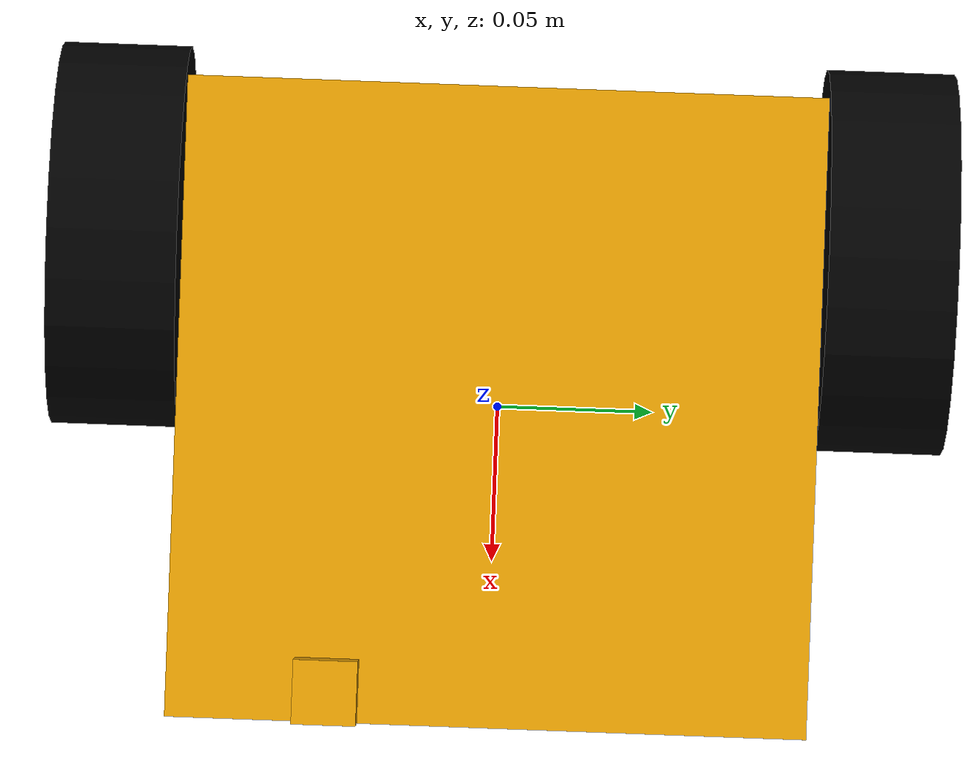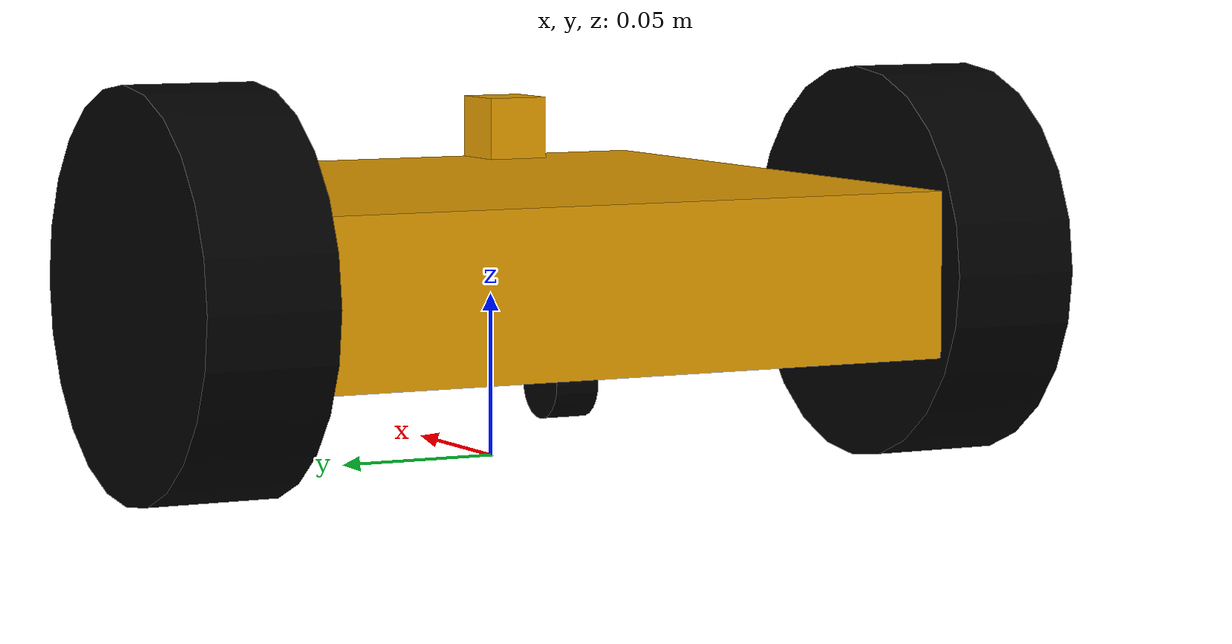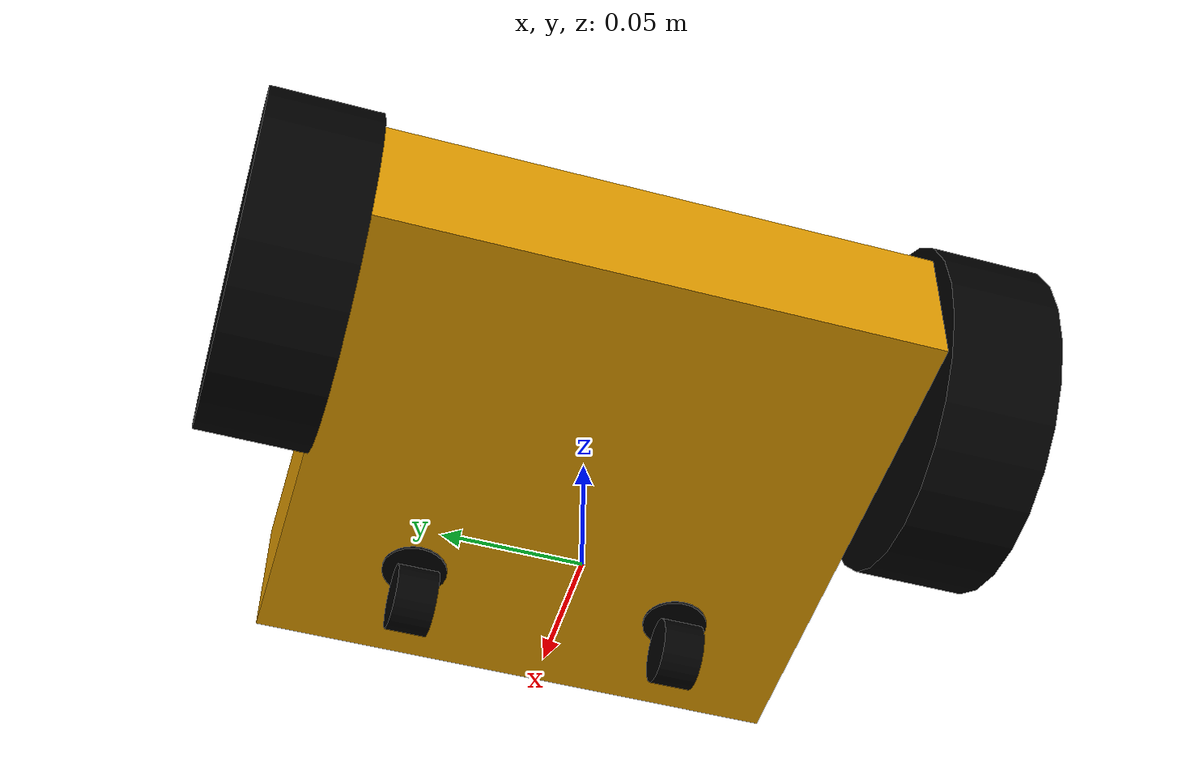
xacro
<?xml version="1.0"?>
<robot name="stupidbot" xmlns:xacro="http://www.ros.org/wiki/xacro">
	<xacro:include filename="$(find stupidbot_description)/urdf/stupidbot_library.urdf.xacro"/>

	<material name="black">
		<color rgba="0 0 0 1"/>
	</material>

	<!-- Base link, center of chassis and body -->
	<link name="base_link">
		<visual>
			<geometry>
				<box size="${chassis_length} ${chassis_width} ${chassis_height}"/>
			</geometry>
		</visual>
		<inertial>
			<mass value="20"/>
			<inertia ixx="${chassis_ixx}" ixy="0.0" ixz="0.0" iyy="${chassis_iyy}" iyz="0.0" izz="${chassis_izz}"/>
		</inertial>
		<collision>
			<geometry>
				<box size="${chassis_length} ${chassis_width} ${chassis_height}"/>
			</geometry>
			<origin xyz="0 0 0" rpy="0 0 0"/>
		</collision>
		<gazebo reference="base_link"/>
	</link>

	<!-- Base footprint as a reference to the ground beneath robot -->
	<link name="base_footprint">
		<visual>
			<geometry>
				<box size="0.001 0.001 0.001"/>
			</geometry>
			<origin xyz="0 0 0" rpy="0 0 0"/>
		</visual>
		<inertial>
			<mass value="0.0001"/>
			<origin xyz="0 0 0"/>
			<inertia ixx="0.0001" ixy="0.0" ixz="0.0" iyy="0.0001" iyz="0.0" izz="0.0001"/>
		</inertial>
		<gazebo reference="base_footprint"/>
	</link>

	<!-- Joint connecting base_link to the footprint -->
	<joint name="base_footprint_joint" type="fixed">
		<origin xyz="0 0 0.06"/>
		<parent link="base_footprint"/>
		<child link="base_link"/>
		<gazebo reference="base_footprint_joint"/>
	</joint>

	<!-- Wheels, complete specification including links and joints -->
	<wheel lr="right" parent="base_link" reflectY="1" />
	<wheel lr="left" parent="base_link" reflectY="-1" />

	<!-- Caster(s), complete specification including links and joints -->
	<caster parent="base_link" lr="right" reflectY="-1"/>
	<caster parent="base_link" lr="left" reflectY="1"/>

	<!-- Camera -->
	<stupidbot_camera parent="base_link"/>

	<!-- Start gazebo plugins, diff_drive and joint state publisher as of now -->
	<stupidbot_gazebo/>
	<gazebo reference="stupidbot"/>
</robot>

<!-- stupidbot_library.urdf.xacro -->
<robot xmlns:xacro="http://ros.org/wiki/xacro">
	<!-- General robot properties -->
	<xacro:include filename="$(find stupidbot_description)/urdf/stupidbot_properties.urdf.xacro"/>
	<!-- Robot wheel creation macro -->
	<xacro:include filename="$(find stupidbot_description)/urdf/stupidbot_wheel.urdf.xacro"/>
	<!-- Caster wheel macro -->
	<xacro:include filename="$(find stupidbot_description)/urdf/stupidbot_caster.urdf.xacro"/>
	<!-- Camera macro -->
	<xacro:include filename="$(find stupidbot_description)/urdf/sensors/stupidbot_camera.urdf.xacro"/>
	<!-- Gazebo descriptions -->
	<xacro:include filename="$(find stupidbot_description)/urdf/stupidbot_gazebo.urdf.xacro"/>
</robot>

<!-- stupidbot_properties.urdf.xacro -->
<robot>

	<!-- Chassis/body properties -->
	<property name="chassis_length" value="0.2"/>
	<property name="chassis_width" value="0.2"/>
	<property name="chassis_height" value="0.05"/>
	<property name="chassis_mass" value="40.0"/>
	<property name="chassis_ixx" value="${chassis_mass*(chassis_length*chassis_length + chassis_height*chassis_height)/12}"/>
	<property name="chassis_iyy" value="${chassis_mass*(chassis_width*chassis_width + chassis_height*chassis_height)/12}"/>
	<property name="chassis_izz" value="${chassis_mass*(chassis_length*chassis_length + chassis_width*chassis_width)/12}"/>

	<!-- Wheel properties -->
	<property name="wheel_mass" value="10.0"/>
	<property name="wheel_radius" value="0.06"/>
	<property name="wheel_width" value="0.04"/>
	<property name="wheel_ixx" value="${(wheel_mass*(3*wheel_radius*wheel_radius + wheel_width*wheel_width))/12}"/>
	<property name="wheel_iyy" value="${(wheel_mass*(3*wheel_radius*wheel_radius + wheel_width*wheel_width))/12}"/>
	<property name="wheel_izz" value="${(wheel_mass*wheel_radius*wheel_radius)/2}"/>

	<!-- Camera properties -->
	<property name="camera_mass" value="0.5"/>
	<property name="camera_length" value="0.02"/>
	<property name="camera_width" value="0.02"/>
	<property name="camera_height" value="0.02"/>
	<property name="camera_x_pos" value="${chassis_length/2 - camera_length/2}"/>
	<property name="camera_y_pos" value="-${chassis_width/4}"/>
	<property name="camera_z_pos" value="${chassis_height/2 + camera_height/2}"/>
	<property name="camera_ixx" value="${camera_mass*(camera_length*camera_length + camera_height*camera_height)/12}"/>
	<property name="camera_iyy" value="${camera_mass*(camera_width*camera_width + camera_height*camera_height)/12}"/>
	<property name="camera_izz" value="${camera_mass*(camera_length*camera_length + camera_width*camera_width)/12}"/>

	<!-- Caster properties -->
	<property name="caster_width" value="0.015"/>
	<property name="caster_radius" value="0.012"/>
	<property name="caster_mass" value="5.0"/>
	<property name="caster_ixx" value="${caster_mass*(3*caster_radius*caster_radius + caster_width*caster_width)/12}"/>
	<property name="caster_iyy" value="${caster_mass*(3*caster_radius*caster_radius + caster_width*caster_width)/12}"/>
	<property name="caster_izz" value="${caster_mass*(caster_radius*caster_radius)/2}"/>
	<property name="caster_y_displacement" value="${chassis_width/4}"/>

</robot>

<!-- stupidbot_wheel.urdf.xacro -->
<robot xmlns:xacro="http://www.ros.org/wiki/xacro">

	<!-- Include chassis properties for positioning joints -->
	<xacro:include filename="$(find stupidbot_description)/urdf/stupidbot_properties.urdf.xacro"/>

	<!-- Full description macro for wheel including transmissions, etc -->
	<xacro:macro name="wheel" params="lr parent reflectY">

		<!-- Wheel link description -->
		<link name="${lr}_wheel">
			<visual>
				<geometry>
					<cylinder length="${wheel_width}" radius="${wheel_radius}"/>
				</geometry>
				<origin rpy="1.57057 0 0"/>
				<material name="black"/>
			</visual>
			<inertial>
				<mass value="${wheel_mass}"/>
				<inertia ixx="${wheel_ixx}" ixy="0.0" ixz="0.0" iyy="${wheel_iyy}" iyz="0.0" izz="${wheel_izz}"/>
			</inertial>
			<collision>
				<geometry>
					<cylinder length="${wheel_width}" radius="${wheel_radius}"/>
				</geometry>
				<origin rpy="1.57057 0 0"/>
			</collision>
		</link>

		<!-- Gazebo description for wheel -->
		<gazebo reference="${lr}_wheel">
			<mu1>1.0</mu1>
			<mu2>1.0</mu2>
			<kp>10000000.0</kp>
			<kd>100.0</kd>
			<minDepth>0.001</minDepth>
		</gazebo>

		<!-- Joint connecting wheel and base link -->
		<joint name="${lr}_wheel_joint" type="continuous">
			<parent link="${parent}"/>
			<child link="${lr}_wheel"/>
			<axis xyz="0 1 0"/>
			<origin xyz="-${chassis_length/4} ${reflectY * (chassis_width/2 + wheel_width/2)} 0"/>
			<limit effort="100" velocity="0.0"/>
		</joint>

		<!-- Gazebo description for wheel_joint -->
		<gazebo reference="${lr}_wheel_joint"/>

		<!-- Transmission for wheel joint -->
		<transmission name="${lr}_wheel_trans">
			<type>transmission_interface/SimpleTransmission</type>
			<joint name="${lr}_wheel_joint">
				<hardwareInterface>EffortJointInterface</hardwareInterface>
			</joint>
			<actuator name="${lr}_motor">
				<mechanicalReduction>1</mechanicalReduction>
			</actuator>
		</transmission>

	</xacro:macro>
</robot>

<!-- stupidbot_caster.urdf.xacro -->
<robot xmlns:xacro="http://www.ros.org/wiki/xacro">

	<!-- Properties file -->
	<xacro:include filename="$(find stupidbot_description)/urdf/stupidbot_properties.urdf.xacro"/>

	<!-- Full caster description including swivel and wheel -->
	<xacro:macro name="caster" params="parent lr reflectY">

		<!-- Caster swivel -->
		<link name="${lr}_caster_swivel">
			<visual>
				<geometry>
					<cylinder length="0.001" radius="${caster_radius}"/>
				</geometry>
				<material name="black"/>
			</visual>
			<inertial>
				<mass value="0.001"/>
				<inertia ixx="0.0001" ixy="0.0" ixz="0.0" iyy="0.0001" iyz="0.0" izz="0.0001"/>
			</inertial>
			<collision>
				<geometry>
					<cylinder length="0.001" radius="${caster_radius}"/>
				</geometry>
			</collision>
			<gazebo reference="${lr}_caster_swivel"/>
		</link>

		<!-- Caster wheel -->
		<link name="${lr}_caster_wheel">
			<visual>
				<geometry>
					<cylinder length="${caster_width}" radius="${caster_radius}"/>
				</geometry>
				<origin rpy="1.57057 0 0"/>
				<material name="black"/>
			</visual>
			<inertial>
				<mass value="${caster_mass}"/>
				<inertia ixx="${caster_ixx}" ixy="0.0" ixz="0.0" iyy="${caster_iyy}" iyz="0.0" izz="${caster_izz}"/>
			</inertial>
			<collision>
				<geometry>
					<cylinder length="${caster_width}" radius="${caster_radius}"/>
				</geometry>
				<origin rpy="1.57057 0 0"/>
			</collision>
		</link>

		<!-- Set Gazebo physics parameters -->
		<gazebo reference="${lr}_caster_wheel">
			<mu1>0.7</mu1>
			<mu2>0.7</mu2>
			<kp>10000000</kp>
			<kd>100.0</kd>
			<minDepth>0.001</minDepth>
		</gazebo>

		<!-- Joint connecting base and caster swivel -->
		<joint name="${lr}_caster_swivel_joint" type="revolute">
			<parent link="${parent}"/>
			<child link="${lr}_caster_swivel"/>
			<axis xyz="0 0 1"/>
			<origin xyz="${chassis_length/4} ${reflectY * caster_y_displacement} -${chassis_height/2 + 0.005}"/>
			<limit upper="3.1415" lower="-3.1415" effort="100.0" velocity="0.0"/>
		</joint>

		<gazebo reference="${lr}_caster_swivel_joint"/>

		<!-- Joint connecting caster swivel and caster -->
		<joint name="${lr}_caster_joint" type="continuous">
			<parent link="${lr}_caster_swivel"/>
			<child link="${lr}_caster_wheel"/>
			<axis xyz="0 1 0"/>
			<origin xyz="0 0 -${caster_radius + 0.003}"/>
			<limit effort="100.0" velocity="0.0"/>
		</joint>

		<gazebo reference="${lr}_caster_joint"/>

	</xacro:macro>
</robot>

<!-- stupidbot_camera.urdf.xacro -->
<robot xmlns:xacro="http://www.ros.org/wiki/xacro">

	<!-- Include properties file -->
	<xacro:include filename="$(find stupidbot_description)/urdf/stupidbot_properties.urdf.xacro"/>

	<!-- Complete camera setup macro -->
	<xacro:macro name="stupidbot_camera" params="parent">

		<!-- Camera body/link description -->
		<link name="camera_link">
			<visual>
				<geometry>
					<box size="${camera_length} ${camera_width} ${camera_height}"/>
				</geometry>
			</visual>
			<inertial>
				<mass value="${camera_mass}"/>
				<inertia ixx="${camera_ixx}" ixy="0.0" ixz="0.0" iyy="${camera_iyy}" iyz="0.0" izz="${camera_izz}"/>
			</inertial>
			<collision>
				<geometry>
					<box size="${camera_length} ${camera_width} ${camera_height}"/>
				</geometry>
			</collision>
		</link>

		<!-- Camera reference in Gazebo -->
		<gazebo reference="camera_link">
			<sensor type="camera" name="front_camera">
				<update_rate>30.0</update_rate>
				<camera name="front">
					<horizontal_fov>1.3962634</horizontal_fov>
					<image>
						<width>800</width>
						<height>800</height>
						<format>R8G8B8</format>
					</image>
					<clip>
						<near>0.02</near>
						<far>300</far>
					</clip>
				</camera>
				<!-- Set up Gazebo plugin for the camera -->
				<plugin name="camera_controller" filename="libgazebo_ros_camera.so">
					<alwaysOn>true</alwaysOn>
					<updateRate>0.0</updateRate>
					<cameraName>front_camera</cameraName>
					<imageTopicName>image_raw</imageTopicName>
					<cameraInfoTopicName>camera_info</cameraInfoTopicName>
					<frameName>camera_link</frameName>
				</plugin>
			</sensor>
		</gazebo>

		<!-- Joint connecting the body and camera links -->
		<joint name="body_to_camera_joint" type="fixed">
			<parent link="${parent}"/>
			<child link="camera_link"/>
			<origin xyz="${camera_x_pos} ${camera_y_pos} ${camera_z_pos}"/>
		</joint>

		<gazebo reference="body_to_camera_joint"/>

	</xacro:macro>
</robot>
